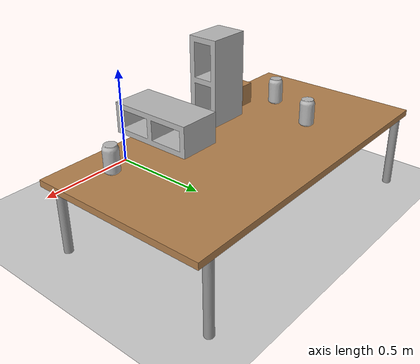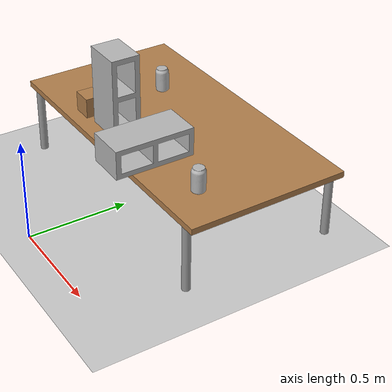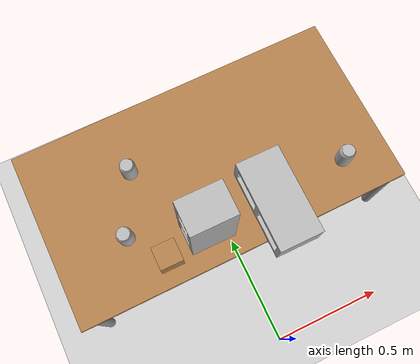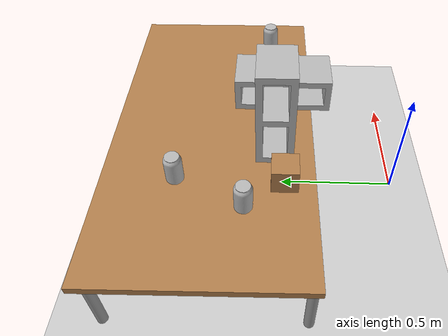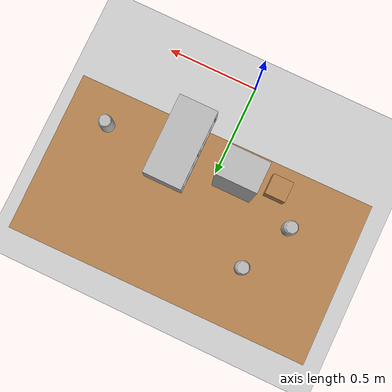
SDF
<sdf version="1.6">
 <world name="default">
  <light name="sun" type="directional">
   <pose>0 0 10 0 -0 0</pose>
   <diffuse>0.8 0.8 0.8 1</diffuse>
   <specular>0.2 0.2 0.2 1</specular>
   <attenuation>
    <range>1000</range>
    <constant>0.9</constant>
    <linear>0.01</linear>
    <quadratic>0.001</quadratic>
   </attenuation>
   <direction>-0.5 0.1 -0.9</direction>
  </light>
  <model name="ground_plane">
   <static>1</static>
   <link name="link">
    <collision name="collision">
     <geometry><plane><normal>0 0 1</normal><size>100 100</size></plane></geometry>
     <surface>
      <contact><collide_bitmask>65535</collide_bitmask></contact>
      <friction><ode><mu>100</mu><mu2>50</mu2></ode></friction>
     </surface>
    </collision>
    <visual name="visual">
     <cast_shadows>0</cast_shadows>
     <geometry><plane><normal>0 0 1</normal><size>100 100</size></plane></geometry>
     <material>
      <script><uri>file://media/materials/scripts/gazebo.material</uri><name>Gazebo/Grey</name></script>
     </material>
    </visual>
   </link>
  </model>
  <gravity>0 0 -9.8</gravity>
  <magnetic_field>6e-06 2.3e-05 -4.2e-05</magnetic_field>
  <atmosphere type="adiabatic"/>
  <physics name="default_physics" default="0" type="ode">
   <max_step_size>0.001</max_step_size>
   <real_time_factor>1</real_time_factor>
   <real_time_update_rate>1000</real_time_update_rate>
  </physics>
  <scene><ambient>0.4 0.4 0.4 1</ambient><background>0.7 0.7 0.7 1</background><shadows>1</shadows></scene>
  <audio><device>default</device></audio>
  <spherical_coordinates>
   <surface_model>EARTH_WGS84</surface_model>
   <latitude_deg>0</latitude_deg>
   <longitude_deg>0</longitude_deg>
   <elevation>0</elevation>
   <heading_deg>0</heading_deg>
  </spherical_coordinates>
  <model name="coke_can">
   <link name="link">
    <inertial>
     <pose>0 0 0.06 0 -0 0</pose>
     <mass>0.39</mass>
     <inertia>
      <ixx>0.00055575</ixx>
      <ixy>0</ixy>
      <ixz>0</ixz>
      <iyy>0.00055575</iyy>
      <iyz>0</iyz>
      <izz>0.0001755</izz>
     </inertia>
    </inertial>
    <collision name="collision">
     <pose>0.003937 0.004724 -0.18 0 -0 0</pose>
     <geometry><mesh><uri>model://coke_can/meshes/coke_can.dae</uri></mesh></geometry>
     <surface>
      <friction><ode><mu>1</mu><mu2>1</mu2></ode></friction>
      <contact><ode><kp>1e+07</kp><kd>1</kd><min_depth>0.001</min_depth><max_vel>0.1</max_vel></ode></contact>
     </surface>
    </collision>
    <visual name="visual">
     <pose>0.003937 0.004724 -0.18 0 -0 0</pose>
     <geometry><mesh><uri>model://coke_can/meshes/coke_can.dae</uri></mesh></geometry>
    </visual>
   </link>
   <pose>-0.42411 0.645707 0.361682 0.019401 -0.022794 0.000896</pose>
  </model>
  <model name="coke_can_0">
   <link name="link">
    <inertial>
     <pose>0 0 0.06 0 -0 0</pose>
     <mass>0.39</mass>
     <inertia>
      <ixx>0.00055575</ixx>
      <ixy>0</ixy>
      <ixz>0</ixz>
      <iyy>0.00055575</iyy>
      <iyz>0</iyz>
      <izz>0.0001755</izz>
     </inertia>
    </inertial>
    <collision name="collision">
     <pose>0.003937 0.004724 -0.18 0 -0 0</pose>
     <geometry><mesh><uri>model://coke_can/meshes/coke_can.dae</uri></mesh></geometry>
     <surface>
      <friction><ode><mu>1</mu><mu2>1</mu2></ode></friction>
      <contact><ode><kp>1e+07</kp><kd>1</kd><min_depth>0.001</min_depth><max_vel>0.1</max_vel></ode></contact>
     </surface>
    </collision>
    <visual name="visual">
     <pose>0.003937 0.004724 -0.18 0 -0 0</pose>
     <geometry><mesh><uri>model://coke_can/meshes/coke_can.dae</uri></mesh></geometry>
    </visual>
   </link>
   <pose>-0.302706 0.902105 0.362392 0.012513 -0.01297 0.026287</pose>
  </model>
  <model name="cinder_block_2">
   <link name="link">
    <inertial>
     <pose>0 0 0.071438 0 -0 0</pose>
     <mass>5</mass>
     <inertia>
      <ixx>0.06908</ixx>
      <ixy>0</ixy>
      <iyy>0.028705</iyy>
      <ixz>0</ixz>
      <iyz>0</iyz>
      <izz>0.073708</izz>
     </inertia>
    </inertial>
    <visual name="visual">
     <geometry><mesh><uri>model://cinder_block_2/meshes/cinder_block.dae</uri></mesh></geometry>
    </visual>
    <collision name="top">
     <pose>0 0 0.130175 0 -0 0</pose>
     <geometry><box><size>0.19368 0.396875 0.0254</size></box></geometry>
     <surface>
      <contact><ode><max_vel>0.1</max_vel><min_depth>0.001</min_depth></ode></contact>
      <friction><ode><mu>1</mu><mu2>1</mu2></ode></friction>
     </surface>
    </collision>
    <collision name="bottom">
     <pose>0 0 0.0127 0 -0 0</pose>
     <geometry><box><size>0.19368 0.396875 0.0254</size></box></geometry>
     <surface>
      <contact><ode><max_vel>0.1</max_vel><min_depth>0.001</min_depth></ode></contact>
      <friction><ode><mu>1</mu><mu2>1</mu2></ode></friction>
     </surface>
    </collision>
    <collision name="left">
     <pose>0 -0.185738 0.071438 0 -0 0</pose>
     <geometry><box><size>0.19368 0.0254 0.092075</size></box></geometry>
     <surface>
      <contact><ode><max_vel>0.1</max_vel><min_depth>0.001</min_depth></ode></contact>
      <friction><ode><mu>1</mu><mu2>1</mu2></ode></friction>
     </surface>
    </collision>
    <collision name="right">
     <pose>0 0.185738 0.071438 0 -0 0</pose>
     <geometry><box><size>0.19368 0.0254 0.092075</size></box></geometry>
     <surface>
      <contact><ode><max_vel>0.1</max_vel><min_depth>0.001</min_depth></ode></contact>
      <friction><ode><mu>1</mu><mu2>1</mu2></ode></friction>
     </surface>
    </collision>
    <collision name="middle">
     <pose>0 0 0.071438 0 -0 0</pose>
     <geometry><box><size>0.19368 0.0254 0.092075</size></box></geometry>
     <surface>
      <contact><ode><max_vel>0.1</max_vel><min_depth>0.001</min_depth></ode></contact>
      <friction><ode><mu>1</mu><mu2>1</mu2></ode></friction>
     </surface>
    </collision>
   </link>
   <pose>-0.112921 0.466668 0.563437 -1.57079 -2e-06 -2e-06</pose>
  </model>
  <model name="wood_cube_10cm">
   <link name="link">
    <pose>0 0 0.05 0 -0 0</pose>
    <inertial>
     <mass>0.5167</mass>
     <inertia>
      <ixx>0.000861167</ixx>
      <ixy>0</ixy>
      <ixz>0</ixz>
      <iyy>0.000861167</iyy>
      <iyz>0</iyz>
      <izz>0.000861167</izz>
     </inertia>
    </inertial>
    <collision name="collision">
     <geometry><box><size>0.1 0.1 0.1</size></box></geometry>
     <surface>
      <contact>
       <poissons_ratio>0.347</poissons_ratio>
       <elastic_modulus>8.8e+09</elastic_modulus>
       <ode><kp>100000</kp><kd>100</kd><max_vel>100</max_vel><min_depth>0.001</min_depth></ode>
      </contact>
      <friction>
       <torsional>
        <coefficient>1</coefficient>
        <use_patch_radius>0</use_patch_radius>
        <surface_radius>0.01</surface_radius>
       </torsional>
      </friction>
     </surface>
    </collision>
    <visual name="visual">
     <geometry><box><size>0.1 0.1 0.1</size></box></geometry>
     <material>
      <script><uri>file://media/materials/scripts/gazebo.material</uri><name>Gazebo/Wood</name></script>
     </material>
    </visual>
   </link>
   <pose>-0.303644 0.500555 0.363987 0 -0 0</pose>
  </model>
  <model name="coke_can_1">
   <link name="link">
    <inertial>
     <pose>0 0 0.06 0 -0 0</pose>
     <mass>0.39</mass>
     <inertia>
      <ixx>0.00055575</ixx>
      <ixy>0</ixy>
      <ixz>0</ixz>
      <iyy>0.00055575</iyy>
      <iyz>0</iyz>
      <izz>0.0001755</izz>
     </inertia>
    </inertial>
    <collision name="collision">
     <pose>0.003937 0.004724 -0.18 0 -0 0</pose>
     <geometry><mesh><uri>model://coke_can/meshes/coke_can.dae</uri></mesh></geometry>
     <surface>
      <friction><ode><mu>1</mu><mu2>1</mu2></ode></friction>
      <contact><ode><kp>1e+07</kp><kd>1</kd><min_depth>0.001</min_depth><max_vel>0.1</max_vel></ode></contact>
     </surface>
    </collision>
    <visual name="visual">
     <pose>0.003937 0.004724 -0.18 0 -0 0</pose>
     <geometry><mesh><uri>model://coke_can/meshes/coke_can.dae</uri></mesh></geometry>
    </visual>
   </link>
   <pose>0.546465 0.564609 0.362424 -0.008095 0.002893 -0.007483</pose>
  </model>
  <model name="short_table">
   <link name="link">
    <inertial>
     <mass>1</mass>
     <inertia><ixx>1</ixx><ixy>0</ixy><ixz>0</ixz><iyy>1</iyy><iyz>0</iyz><izz>1</izz></inertia>
    </inertial>
    <visual name="front_left_leg">
     <pose>0.68 0.38 0.175 0 -0 0</pose>
     <geometry><cylinder><radius>0.02</radius><length>0.35</length></cylinder></geometry>
     <material>
      <script><uri>file://media/materials/scripts/gazebo.material</uri><name>Gazebo/Grey</name></script>
      <shader type="vertex"><normal_map>__default__</normal_map></shader>
      <ambient>0.3 0.3 0.3 1</ambient>
      <diffuse>0.7 0.7 0.7 1</diffuse>
      <specular>0.01 0.01 0.01 1</specular>
      <emissive>0 0 0 1</emissive>
     </material>
    </visual>
    <visual name="visual1">
     <pose>0 0 0.35 0 -0 0</pose>
     <geometry><box><size>1.5 0.8 0.03</size></box></geometry>
     <material>
      <script><uri>file://media/materials/scripts/gazebo.material</uri><name>Gazebo/Wood</name></script>
      <shader type="vertex"><normal_map>__default__</normal_map></shader>
      <ambient>1 1 1 1</ambient>
      <diffuse>1 1 1 1</diffuse>
      <specular>0.2 0.2 0.2 1</specular>
      <emissive>0 0 0 1</emissive>
     </material>
    </visual>
    <visual name="back_right_leg">
     <pose>-0.68 -0.38 0.175 0 -0 0</pose>
     <geometry><cylinder><radius>0.02</radius><length>0.35</length></cylinder></geometry>
     <material>
      <script><uri>file://media/materials/scripts/gazebo.material</uri><name>Gazebo/Grey</name></script>
      <shader type="vertex"><normal_map>__default__</normal_map></shader>
      <ambient>0.3 0.3 0.3 1</ambient>
      <diffuse>0.7 0.7 0.7 1</diffuse>
      <specular>0.01 0.01 0.01 1</specular>
      <emissive>0 0 0 1</emissive>
     </material>
    </visual>
    <visual name="back_left_leg">
     <pose>-0.68 0.38 0.175 0 -0 0</pose>
     <geometry><cylinder><radius>0.02</radius><length>0.35</length></cylinder></geometry>
     <material>
      <script><uri>file://media/materials/scripts/gazebo.material</uri><name>Gazebo/Grey</name></script>
      <shader type="vertex"><normal_map>__default__</normal_map></shader>
      <ambient>0.3 0.3 0.3 1</ambient>
      <diffuse>0.7 0.7 0.7 1</diffuse>
      <specular>0.01 0.01 0.01 1</specular>
      <emissive>0 0 0 1</emissive>
     </material>
    </visual>
    <visual name="front_right_leg">
     <pose>0.68 -0.38 0.175 0 -0 0</pose>
     <geometry><cylinder><radius>0.02</radius><length>0.35</length></cylinder></geometry>
     <material>
      <script><uri>file://media/materials/scripts/gazebo.material</uri><name>Gazebo/Grey</name></script>
      <shader type="vertex"><normal_map>__default__</normal_map></shader>
      <ambient>0.3 0.3 0.3 1</ambient>
      <diffuse>0.7 0.7 0.7 1</diffuse>
      <specular>0.01 0.01 0.01 1</specular>
      <emissive>0 0 0 1</emissive>
     </material>
    </visual>
    <collision name="back_right_leg">
     <pose>-0.68 -0.38 0.175 0 -0 0</pose>
     <geometry><cylinder><radius>0.02</radius><length>0.35</length></cylinder></geometry>
     <surface>
      <friction>
       <ode><mu>1</mu><mu2>1</mu2><fdir1>0 0 0</fdir1><slip1>0</slip1><slip2>0</slip2></ode>
       <torsional>
        <coefficient>1</coefficient>
        <patch_radius>0</patch_radius>
        <surface_radius>0</surface_radius>
        <use_patch_radius>1</use_patch_radius>
        <ode><slip>0</slip></ode>
       </torsional>
      </friction>
      <bounce><restitution_coefficient>0</restitution_coefficient><threshold>1e+06</threshold></bounce>
      <contact>
       <collide_without_contact>0</collide_without_contact>
       <collide_without_contact_bitmask>1</collide_without_contact_bitmask>
       <collide_bitmask>1</collide_bitmask>
       <ode>
        <soft_cfm>0</soft_cfm>
        <soft_erp>0.2</soft_erp>
        <kp>1e+13</kp>
        <kd>1</kd>
        <max_vel>0.01</max_vel>
        <min_depth>0</min_depth>
       </ode>
       <bullet>
        <split_impulse>1</split_impulse>
        <split_impulse_penetration_threshold>-0.01</split_impulse_penetration_threshold>
        <soft_cfm>0</soft_cfm>
        <soft_erp>0.2</soft_erp>
        <kp>1e+13</kp>
        <kd>1</kd>
       </bullet>
      </contact>
     </surface>
    </collision>
    <collision name="front_right_leg">
     <pose>0.68 -0.38 0.175 0 -0 0</pose>
     <geometry><cylinder><radius>0.02</radius><length>0.35</length></cylinder></geometry>
     <surface>
      <friction>
       <ode><mu>1</mu><mu2>1</mu2><fdir1>0 0 0</fdir1><slip1>0</slip1><slip2>0</slip2></ode>
       <torsional>
        <coefficient>1</coefficient>
        <patch_radius>0</patch_radius>
        <surface_radius>0</surface_radius>
        <use_patch_radius>1</use_patch_radius>
        <ode><slip>0</slip></ode>
       </torsional>
      </friction>
      <bounce><restitution_coefficient>0</restitution_coefficient><threshold>1e+06</threshold></bounce>
      <contact>
       <collide_without_contact>0</collide_without_contact>
       <collide_without_contact_bitmask>1</collide_without_contact_bitmask>
       <collide_bitmask>1</collide_bitmask>
       <ode>
        <soft_cfm>0</soft_cfm>
        <soft_erp>0.2</soft_erp>
        <kp>1e+13</kp>
        <kd>1</kd>
        <max_vel>0.01</max_vel>
        <min_depth>0</min_depth>
       </ode>
       <bullet>
        <split_impulse>1</split_impulse>
        <split_impulse_penetration_threshold>-0.01</split_impulse_penetration_threshold>
        <soft_cfm>0</soft_cfm>
        <soft_erp>0.2</soft_erp>
        <kp>1e+13</kp>
        <kd>1</kd>
       </bullet>
      </contact>
     </surface>
    </collision>
    <collision name="front_left_leg">
     <pose>0.68 0.38 0.175 0 -0 0</pose>
     <geometry><cylinder><radius>0.02</radius><length>0.35</length></cylinder></geometry>
     <surface>
      <friction>
       <ode><mu>1</mu><mu2>1</mu2><fdir1>0 0 0</fdir1><slip1>0</slip1><slip2>0</slip2></ode>
       <torsional>
        <coefficient>1</coefficient>
        <patch_radius>0</patch_radius>
        <surface_radius>0</surface_radius>
        <use_patch_radius>1</use_patch_radius>
        <ode><slip>0</slip></ode>
       </torsional>
      </friction>
      <bounce><restitution_coefficient>0</restitution_coefficient><threshold>1e+06</threshold></bounce>
      <contact>
       <collide_without_contact>0</collide_without_contact>
       <collide_without_contact_bitmask>1</collide_without_contact_bitmask>
       <collide_bitmask>1</collide_bitmask>
       <ode>
        <soft_cfm>0</soft_cfm>
        <soft_erp>0.2</soft_erp>
        <kp>1e+13</kp>
        <kd>1</kd>
        <max_vel>0.01</max_vel>
        <min_depth>0</min_depth>
       </ode>
       <bullet>
        <split_impulse>1</split_impulse>
        <split_impulse_penetration_threshold>-0.01</split_impulse_penetration_threshold>
        <soft_cfm>0</soft_cfm>
        <soft_erp>0.2</soft_erp>
        <kp>1e+13</kp>
        <kd>1</kd>
       </bullet>
      </contact>
     </surface>
    </collision>
    <collision name="back_left_leg">
     <pose>-0.68 0.38 0.175 0 -0 0</pose>
     <geometry><cylinder><radius>0.02</radius><length>0.35</length></cylinder></geometry>
     <surface>
      <friction>
       <ode><mu>1</mu><mu2>1</mu2><fdir1>0 0 0</fdir1><slip1>0</slip1><slip2>0</slip2></ode>
       <torsional>
        <coefficient>1</coefficient>
        <patch_radius>0</patch_radius>
        <surface_radius>0</surface_radius>
        <use_patch_radius>1</use_patch_radius>
        <ode><slip>0</slip></ode>
       </torsional>
      </friction>
      <bounce><restitution_coefficient>0</restitution_coefficient><threshold>1e+06</threshold></bounce>
      <contact>
       <collide_without_contact>0</collide_without_contact>
       <collide_without_contact_bitmask>1</collide_without_contact_bitmask>
       <collide_bitmask>1</collide_bitmask>
       <ode>
        <soft_cfm>0</soft_cfm>
        <soft_erp>0.2</soft_erp>
        <kp>1e+13</kp>
        <kd>1</kd>
        <max_vel>0.01</max_vel>
        <min_depth>0</min_depth>
       </ode>
       <bullet>
        <split_impulse>1</split_impulse>
        <split_impulse_penetration_threshold>-0.01</split_impulse_penetration_threshold>
        <soft_cfm>0</soft_cfm>
        <soft_erp>0.2</soft_erp>
        <kp>1e+13</kp>
        <kd>1</kd>
       </bullet>
      </contact>
     </surface>
    </collision>
    <collision name="surface">
     <pose>0 0 0.35 0 -0 0</pose>
     <geometry><box><size>1.5 0.8 0.03</size></box></geometry>
     <surface>
      <friction>
       <ode><mu>0.6</mu><mu2>0.6</mu2><fdir1>0 0 0</fdir1><slip1>0</slip1><slip2>0</slip2></ode>
       <torsional>
        <coefficient>1</coefficient>
        <patch_radius>0</patch_radius>
        <surface_radius>0</surface_radius>
        <use_patch_radius>1</use_patch_radius>
        <ode><slip>0</slip></ode>
       </torsional>
      </friction>
      <bounce><restitution_coefficient>0</restitution_coefficient><threshold>1e+06</threshold></bounce>
      <contact>
       <collide_without_contact>0</collide_without_contact>
       <collide_without_contact_bitmask>1</collide_without_contact_bitmask>
       <collide_bitmask>1</collide_bitmask>
       <ode>
        <soft_cfm>0</soft_cfm>
        <soft_erp>0.2</soft_erp>
        <kp>1e+13</kp>
        <kd>1</kd>
        <max_vel>0.01</max_vel>
        <min_depth>0</min_depth>
       </ode>
       <bullet>
        <split_impulse>1</split_impulse>
        <split_impulse_penetration_threshold>-0.01</split_impulse_penetration_threshold>
        <soft_cfm>0</soft_cfm>
        <soft_erp>0.2</soft_erp>
        <kp>1e+13</kp>
        <kd>1</kd>
       </bullet>
      </contact>
     </surface>
    </collision>
   </link>
   <static>1</static>
   <pose>0.007486 0.786091 0 0 -0 0.009021</pose>
  </model>
  <plugin name="gazebo_geometries_plugin" filename="libgazebo_geometries_plugin.so"/>
  <model name="cinder_block_2_0">
   <link name="link">
    <inertial>
     <pose>0 0 0.071438 0 -0 0</pose>
     <mass>5</mass>
     <inertia>
      <ixx>0.06908</ixx>
      <ixy>0</ixy>
      <iyy>0.028705</iyy>
      <ixz>0</ixz>
      <iyz>0</iyz>
      <izz>0.073708</izz>
     </inertia>
    </inertial>
    <visual name="visual">
     <geometry><mesh><uri>model://cinder_block_2/meshes/cinder_block.dae</uri></mesh></geometry>
    </visual>
    <collision name="top">
     <pose>0 0 0.130175 0 -0 0</pose>
     <geometry><box><size>0.19368 0.396875 0.0254</size></box></geometry>
     <surface>
      <contact><ode><max_vel>0.1</max_vel><min_depth>0.001</min_depth></ode></contact>
      <friction><ode><mu>1</mu><mu2>1</mu2></ode></friction>
     </surface>
    </collision>
    <collision name="bottom">
     <pose>0 0 0.0127 0 -0 0</pose>
     <geometry><box><size>0.19368 0.396875 0.0254</size></box></geometry>
     <surface>
      <contact><ode><max_vel>0.1</max_vel><min_depth>0.001</min_depth></ode></contact>
      <friction><ode><mu>1</mu><mu2>1</mu2></ode></friction>
     </surface>
    </collision>
    <collision name="left">
     <pose>0 -0.185738 0.071438 0 -0 0</pose>
     <geometry><box><size>0.19368 0.0254 0.092075</size></box></geometry>
     <surface>
      <contact><ode><max_vel>0.1</max_vel><min_depth>0.001</min_depth></ode></contact>
      <friction><ode><mu>1</mu><mu2>1</mu2></ode></friction>
     </surface>
    </collision>
    <collision name="right">
     <pose>0 0.185738 0.071438 0 -0 0</pose>
     <geometry><box><size>0.19368 0.0254 0.092075</size></box></geometry>
     <surface>
      <contact><ode><max_vel>0.1</max_vel><min_depth>0.001</min_depth></ode></contact>
      <friction><ode><mu>1</mu><mu2>1</mu2></ode></friction>
     </surface>
    </collision>
    <collision name="middle">
     <pose>0 0 0.071438 0 -0 0</pose>
     <geometry><box><size>0.19368 0.0254 0.092075</size></box></geometry>
     <surface>
      <contact><ode><max_vel>0.1</max_vel><min_depth>0.001</min_depth></ode></contact>
      <friction><ode><mu>1</mu><mu2>1</mu2></ode></friction>
     </surface>
    </collision>
   </link>
   <pose>0.192041 0.507612 0.364917 0 -0 0</pose>
  </model>
 </world>
</sdf>
